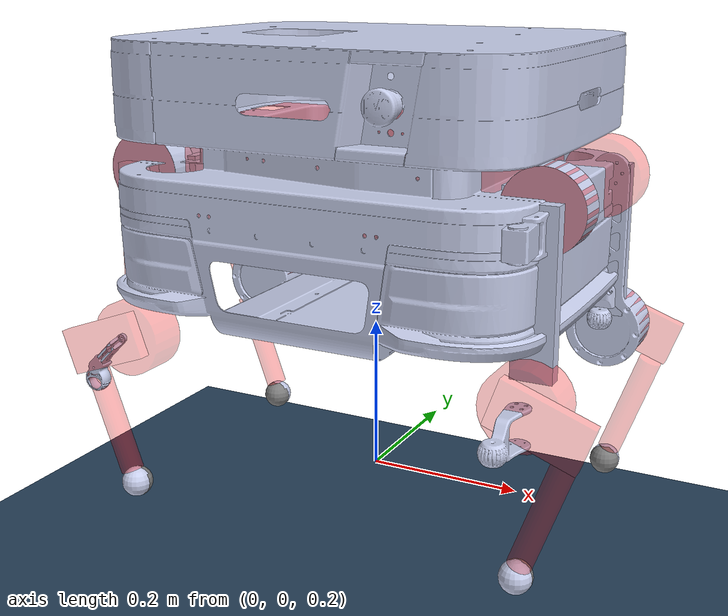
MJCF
<mujoco model="Big red dog uie scene">
  <include file="bigreddog_uie.xml"/>

  <statistic center="0 0 0.1" extent="0.8"/>

  <visual>
    <headlight diffuse="0.6 0.6 0.6" ambient="0.3 0.3 0.3" specular="0 0 0"/>
    <rgba haze="0.15 0.25 0.35 1"/>
    <global azimuth="-130" elevation="-20"/>
  </visual>

  <asset>
    <texture type="skybox" builtin="gradient" rgb1="0.3 0.5 0.7" rgb2="0 0 0" width="512" height="3072"/>
    <texture type="2d" name="groundplane" builtin="checker" mark="edge" rgb1="0.2 0.3 0.4" rgb2="0.1 0.2 0.3"
      markrgb="0.8 0.8 0.8" width="300" height="300"/>
    <material name="groundplane" texture="groundplane" texuniform="true" texrepeat="5 5" reflectance="0.2"/>
  </asset>

  <worldbody>
    <light pos="0 0 1.5" dir="0 0 -1" directional="true"/>
    <geom name="floor" size="0 0 0.05" type="plane" material="groundplane"/>

  </worldbody>
</mujoco>

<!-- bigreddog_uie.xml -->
<mujoco model="bigreddog_uie">
  <compiler angle="radian" meshdir="meshes"/>

  <option cone="elliptic" impratio="100" />

  <default>
    <default class="bigreddog_uie">
      <geom friction="0.4" margin="0.001" condim="1"/>
      <joint damping="0.1" armature="0.01" frictionloss="0.2"/>
      <motor ctrlrange="-20 20"/>
      <default class="hip">
        <joint axis="1 0 0" range="-0.611 0.611"/>
        <motor ctrlrange="-20 20"/>
      </default>
      <default class="thigh">
        <joint axis="0 1 0" range="-2.583 2.583"/>
        <motor ctrlrange="-20 20"/>
      </default>
      <default class="calf">
        <joint axis="0 1 0" range="-2.809 2.809"/>
        <motor ctrlrange="-80 80"/>
      </default>
      <default class="visual">
        <geom type="mesh" contype="0" conaffinity="0" group="2"
          rgba="0.752941 0.752941 0.752941 1"
          density="0"
        />
      </default>
      <default class="collision">
        <geom group="0" type="mesh" rgba="1 0 0 0.3" />
        <default class="foot">
          <geom size="0.02" priority="1" condim="6"
            friction="0.4 0.02 0.01"/>
        </default>
      </default>
    </default>
  </default>

  <asset>
    <mesh name="base_link" file="base_link.STL"/>
    <mesh name="FL_hip_link" file="FL_hip_link.STL"/>
    <mesh name="FL_thigh_link" file="FL_thigh_link.STL"/>
    <mesh name="FL_calf_link" file="FL_calf_link.STL"/>
    <mesh name="FR_hip_link" file="FR_hip_link.STL"/>
    <mesh name="FR_thigh_link" file="FR_thigh_link.STL"/>
    <mesh name="FR_calf_link" file="FR_calf_link.STL"/>
    <mesh name="RL_hip_link" file="RL_hip_link.STL"/>
    <mesh name="RL_thigh_link" file="RL_thigh_link.STL"/>
    <mesh name="RL_calf_link" file="RL_calf_link.STL"/>
    <mesh name="RR_hip_link" file="RR_hip_link.STL"/>
    <mesh name="RR_thigh_link" file="RR_thigh_link.STL"/>
    <mesh name="RR_calf_link" file="RR_calf_link.STL"/>
  </asset>

  <worldbody>
    <body name="base_link" pos="0 0 0.6" childclass="bigreddog_uie">
      <inertial pos="-0.02594078 0.00017041 0.02153795" quat="1 0 0 0" mass="5.2" diaginertia="0.03784813 0.10658838 0.11380621" />
      <freejoint />
      <geom type="mesh" contype="0" conaffinity="0" group="1" density="0" rgba="0.792157 0.819608 0.933333 1" mesh="base_link" class="visual"/>
      <geom size="0.208 0.121 0.0635" type="box" class="collision"/>
      <site name="imu" pos="0 0 0" />
      <body name="FL_hip_link" pos="0.208 0.0655 0">
        <inertial pos="0.0550179 0.0412156 0" quat="0.443075 0.442528 0.55112 0.551472" mass="0.69" diaginertia="0.000948533 0.00068785 0.000551296"/>
        <joint name="FL_hip_joint" class="hip"/>
        <geom type="mesh" contype="0" conaffinity="0" group="1" density="0" rgba="0.792157 0.819608 0.933333 1" mesh="FL_hip_link" class="visual"/>
        <geom size="0.05 0.02125" pos="0.05892 0.04424 0" quat="0.707105 -0.707108 0 0" type="cylinder" class="collision"/>
        <body name="FL_thigh_link" pos="0.058917 0.0648995 0">
          <inertial pos="-8.98e-05 0.0242444 -0.179504" quat="0.705374 0.0425245 -0.0440411 0.706187" mass="0.725" diaginertia="0.00350118 0.00327677 0.000529578"/>
          <joint name="FL_thigh_joint" class="thigh"/>
          <geom type="mesh" contype="0" conaffinity="0" group="1" density="0" rgba="0.792157 0.819608 0.933333 1" mesh="FL_thigh_link" class="visual"/>
          <geom size="0.025 0.009 0.1" pos="0 0.01 -0.088" type="box" rgba="0.792157 0.819608 0.933333 1" class="collision"/>
          <geom size="0.049 0.025" pos="0 0.03 -0.21" quat="0.707105 -0.707108 0 0" type="cylinder" class="collision"/>
          <body name="FL_calf_link" pos="0.00102606 0.056 -0.207181">
            <inertial pos="0.0319708 -0.00204971 -0.0603811" quat="0.763524 0.0463716 0.0949428 0.637076" mass="1.15" diaginertia="0.0085558 0.00774317 0.00101933"/>
            <joint name="FL_calf_joint" class="calf"/>
            <geom type="mesh" contype="0" conaffinity="0" group="1" density="0" rgba="0.792157 0.819608 0.933333 1" mesh="FL_calf_link" class="visual"/>
            <geom size="0.0575 0.0075 0.03" pos="0.02625 0.0075 -0.00955" quat="0.984813 0 0.173616 0" type="box" class="collision"/>
            <geom size="0.015 0.0725" pos="0.02919 -0.006 -0.1197" quat="0.984813 0 0.173616 0" type="cylinder" class="collision"/>
            <geom size="0.02" pos="0 -0.0085 -0.20474" rgba="0.792157 0.819608 0.933333 1"/>
            <geom size="0.02" pos="0 -0.01 -0.205"/>
            <geom size="0.02" pos="0 -0.01 -0.205" contype="0" conaffinity="0" group="1" density="0" rgba="0.2 0.8 0.2 1"/>
          </body>
        </body>
      </body>
      <body name="FR_hip_link" pos="0.208 -0.0655 0">
        <inertial pos="0.0550179 -0.0412156 0" quat="0.551551 0.551041 0.442804 0.442799" mass="0.69" diaginertia="0.000948534 0.00068785 0.000551297"/>
        <joint name="FR_hip_joint" class="hip"/>
        <geom type="mesh" contype="0" conaffinity="0" group="1" density="0" rgba="0.792157 0.819608 0.933333 1" mesh="FR_hip_link" class="visual"/>
        <geom size="0.05 0.02125" pos="0.05892 -0.04424 0" quat="0.707105 -0.707108 0 0" type="cylinder" class="collision"/>
        <body name="FR_thigh_link" pos="0.058917 -0.0648995 0">
          <inertial pos="-8.98e-05 -0.0242445 -0.179505" quat="0.706187 -0.0440412 0.0425245 0.705374" mass="0.725" diaginertia="0.00350113 0.00327668 0.000529609"/>
          <joint name="FR_thigh_joint" class="thigh"/>
          <geom type="mesh" contype="0" conaffinity="0" group="1" density="0" rgba="0.792157 0.819608 0.933333 1" mesh="FR_thigh_link" class="visual"/>
          <geom size="0.025 0.009 0.1" pos="0 -0.01 -0.088" type="box" rgba="0.792157 0.819608 0.933333 1" class="collision"/>
          <geom size="0.049 0.025" pos="0 -0.03 -0.21" quat="0.707105 -0.707108 0 0" type="cylinder" class="collision"/>
          <body name="FR_calf_link" pos="0.00102606 -0.056 -0.207181">
            <inertial pos="0.0319708 0.00204972 -0.0603811" quat="0.637076 0.0949428 0.0463716 0.763524" mass="1.15" diaginertia="0.0085558 0.00774317 0.00101933"/>
            <joint name="FR_calf_joint" class="calf"/>
            <geom type="mesh" contype="0" conaffinity="0" group="1" density="0" rgba="0.792157 0.819608 0.933333 1" mesh="FR_calf_link" class="visual"/>
            <geom size="0.0575 0.0075 0.03" pos="0.02625 -0.0075 -0.00955" quat="0.984813 0 0.173616 0" type="box" class="collision"/>
            <geom size="0.015 0.0725" pos="0.02919 0.006 -0.1197" quat="0.984813 0 0.173616 0" type="cylinder" class="collision"/>
            <geom size="0.02" pos="0 0.0085 -0.20474" rgba="0.792157 0.819608 0.933333 1"/>
            <geom size="0.02" pos="0 0.01 -0.205"/>
            <geom size="0.02" pos="0 0.01 -0.205" contype="0" conaffinity="0" group="1" density="0" rgba="0.2 0.8 0.2 1"/>
          </body>
        </body>
      </body>
      <body name="RL_hip_link" pos="-0.208 0.0655 0">
        <inertial pos="-0.0550179 0.0412156 0" quat="0.551551 0.551041 0.442804 0.442799" mass="0.69" diaginertia="0.000948534 0.00068785 0.000551297"/>
        <joint name="RL_hip_joint" class="hip"/>
        <geom type="mesh" contype="0" conaffinity="0" group="1" density="0" rgba="0.792157 0.819608 0.933333 1" mesh="RL_hip_link"/>
        <geom size="0.05 0.02125" pos="-0.05892 0.04424 0" quat="0.707105 -0.707108 0 0" type="cylinder" class="collision"/>
        <body name="RL_thigh_link" pos="-0.058917 0.0648995 0">
          <inertial pos="8.981e-05 0.0242444 -0.179504" quat="0.706187 0.0440413 -0.0425247 0.705374" mass="0.725" diaginertia="0.00350117 0.00327675 0.000529578"/>
          <joint name="RL_thigh_joint" class="thigh"/>
          <geom type="mesh" contype="0" conaffinity="0" group="1" density="0" rgba="0.792157 0.819608 0.933333 1" mesh="RL_thigh_link"/>
          <geom size="0.025 0.009 0.1" pos="0 0.01 -0.088" type="box" class="collision"/>
          <geom size="0.049 0.025" pos="0 0.03 -0.21" quat="0.707105 -0.707108 0 0" type="cylinder" class="collision"/>
          <body name="RL_calf_link" pos="-0.00102606 0.056 -0.207181">
            <inertial pos="-0.0319708 -0.00204972 -0.0603811" quat="0.637076 -0.0949428 -0.0463716 0.763524" mass="1.15" diaginertia="0.0085558 0.00774317 0.00101933"/>
            <joint name="RL_calf_joint" class="calf"/>
            <geom type="mesh" contype="0" conaffinity="0" group="1" density="0" rgba="0.792157 0.819608 0.933333 1" mesh="RL_calf_link"/>
            <geom size="0.0575 0.0075 0.03" pos="-0.02625 0.0075 -0.00955" quat="0.984813 0 -0.173616 0" type="box" class="collision"/>
            <geom size="0.015 0.0725" pos="-0.02919 -0.006 -0.1197" quat="0.984813 0 -0.173616 0" type="cylinder" class="collision"/>
            <geom size="0.02" pos="0 -0.0085 -0.20474" rgba="0.792157 0.819608 0.933333 1"/>
            <geom size="0.02" pos="0 -0.01 -0.205"/>
            <geom size="0.02" pos="0 -0.01 -0.205" contype="0" conaffinity="0" group="1" density="0" rgba="0.2 0.8 0.2 1"/>
          </body>
        </body>
      </body>
      <body name="RR_hip_link" pos="-0.208 -0.0655 0">
        <inertial pos="-0.0550179 -0.0412156 0" quat="0.443075 0.442528 0.55112 0.551472" mass="0.69" diaginertia="0.000948533 0.00068785 0.000551296"/>
        <joint name="RR_hip_joint" class="hip"/>
        <geom type="mesh" contype="0" conaffinity="0" group="1" density="0" rgba="0.792157 0.819608 0.933333 1" mesh="RR_hip_link"/>
        <geom size="0.05 0.02125" pos="-0.05892 -0.04424 0" quat="0.707105 -0.707108 0 0" type="cylinder" class="collision"/>
        <body name="RR_thigh_link" pos="-0.058917 -0.0648995 0">
          <inertial pos="8.981e-05 -0.0242445 -0.179505" quat="0.705374 -0.0425254 0.044042 0.706187" mass="0.725" diaginertia="0.00350115 0.0032767 0.000529607"/>
          <joint name="RR_thigh_joint" class="thigh"/>
          <geom type="mesh" contype="0" conaffinity="0" group="1" density="0" rgba="0.792157 0.819608 0.933333 1" mesh="RR_thigh_link"/>
          <geom size="0.025 0.009 0.1" pos="0 -0.01 -0.088" type="box" class="collision"/>
          <geom size="0.049 0.025" pos="0 -0.03 -0.21" quat="0.707105 -0.707108 0 0" type="cylinder" class="collision"/>
          <body name="RR_calf_link" pos="-0.00102606 -0.056 -0.207181">
            <inertial pos="-0.0319708 0.00204972 -0.0603811" quat="0.763524 -0.0463716 -0.0949428 0.637076" mass="1.15" diaginertia="0.0085558 0.00774317 0.00101933"/>
            <joint name="RR_calf_joint" class="calf"/>
            <geom type="mesh" contype="0" conaffinity="0" group="1" density="0" rgba="0.792157 0.819608 0.933333 1" mesh="RR_calf_link"/>
            <geom size="0.0575 0.0075 0.03" pos="-0.02625 -0.0075 -0.00955" quat="0.984813 0 -0.173616 0" type="box" class="collision"/>
            <geom size="0.015 0.0725" pos="-0.02919 0.006 -0.1197" quat="0.984813 0 -0.173616 0" type="cylinder" class="collision"/>
            <geom size="0.02" pos="0 0.0085 -0.20474" rgba="0.792157 0.819608 0.933333 1"/>
            <geom size="0.02" pos="0 0.01 -0.205"/>
            <geom size="0.02" pos="0 0.01 -0.205" contype="0" conaffinity="0" group="1" density="0" rgba="0.2 0.8 0.2 1"/>
          </body>
        </body>
      </body>
    </body>
  </worldbody>

  <actuator>
    <motor class="hip" name="FL_hip" joint="FL_hip_joint" />
    <motor class="thigh" name="FL_thigh" joint="FL_thigh_joint" />
    <motor class="calf" name="FL_calf" joint="FL_calf_joint" />

    <motor class="hip" name="FR_hip" joint="FR_hip_joint" />
    <motor class="thigh" name="FR_thigh" joint="FR_thigh_joint" />
    <motor class="calf" name="FR_calf" joint="FR_calf_joint" />

    <motor class="hip" name="RL_hip" joint="RL_hip_joint" />
    <motor class="thigh" name="RL_thigh" joint="RL_thigh_joint" />
    <motor class="calf" name="RL_calf" joint="RL_calf_joint" />

    <motor class="hip" name="RR_hip" joint="RR_hip_joint" />
    <motor class="thigh" name="RR_thigh" joint="RR_thigh_joint" />
    <motor class="calf" name="RR_calf" joint="RR_calf_joint" />
  </actuator>

  <sensor>
    <jointpos name="FL_hip_pos" joint="FL_hip_joint" />
    <jointpos name="FL_thigh_pos" joint="FL_thigh_joint" />
    <jointpos name="FL_calf_pos" joint="FL_calf_joint" />

    <jointpos name="FR_hip_pos" joint="FR_hip_joint" />
    <jointpos name="FR_thigh_pos" joint="FR_thigh_joint" />
    <jointpos name="FR_calf_pos" joint="FR_calf_joint" />
    <jointpos name="RL_hip_pos" joint="RL_hip_joint" />
    <jointpos name="RL_thigh_pos" joint="RL_thigh_joint" />
    <jointpos name="RL_calf_pos" joint="RL_calf_joint" />

    <jointpos name="RR_hip_pos" joint="RR_hip_joint" />
    <jointpos name="RR_thigh_pos" joint="RR_thigh_joint" />
    <jointpos name="RR_calf_pos" joint="RR_calf_joint" />

    <jointvel name="FL_hip_vel" joint="FL_hip_joint" />
    <jointvel name="FL_thigh_vel" joint="FL_thigh_joint" />
    <jointvel name="FL_calf_vel" joint="FL_calf_joint" />

    <jointvel name="FR_hip_vel" joint="FR_hip_joint" />
    <jointvel name="FR_thigh_vel" joint="FR_thigh_joint" />
    <jointvel name="FR_calf_vel" joint="FR_calf_joint" />
    <jointvel name="RL_hip_vel" joint="RL_hip_joint" />
    <jointvel name="RL_thigh_vel" joint="RL_thigh_joint" />
    <jointvel name="RL_calf_vel" joint="RL_calf_joint" />

    <jointvel name="RR_hip_vel" joint="RR_hip_joint" />
    <jointvel name="RR_thigh_vel" joint="RR_thigh_joint" />
    <jointvel name="RR_calf_vel" joint="RR_calf_joint" />

    <jointactuatorfrc name="FL_hip_torque" joint="FL_hip_joint" noise="0.01" />
    <jointactuatorfrc name="FL_thigh_torque" joint="FL_thigh_joint" noise="0.01" />
    <jointactuatorfrc name="FL_calf_torque" joint="FL_calf_joint" noise="0.01" />

    <jointactuatorfrc name="FR_hip_torque" joint="FR_hip_joint" noise="0.01" />
    <jointactuatorfrc name="FR_thigh_torque" joint="FR_thigh_joint" noise="0.01" />
    <jointactuatorfrc name="FR_calf_torque" joint="FR_calf_joint" noise="0.01" />
    <jointactuatorfrc name="RL_hip_torque" joint="RL_hip_joint" noise="0.01" />
    <jointactuatorfrc name="RL_thigh_torque" joint="RL_thigh_joint" noise="0.01" />
    <jointactuatorfrc name="RL_calf_torque" joint="RL_calf_joint" noise="0.01" />

    <jointactuatorfrc name="RR_hip_torque" joint="RR_hip_joint" noise="0.01" />
    <jointactuatorfrc name="RR_thigh_torque" joint="RR_thigh_joint" noise="0.01" />
    <jointactuatorfrc name="RR_calf_torque" joint="RR_calf_joint" noise="0.01" />

    <framequat name="imu_quat" objtype="site" objname="imu" />
    <gyro name="imu_gyro" site="imu" />
    <accelerometer name="imu_acc" site="imu" />

    <framepos name="frame_pos" objtype="site" objname="imu" />
    <framelinvel name="frame_vel" objtype="site" objname="imu" />
    <frameangvel name="frame_ang_vel" objtype="site" objname="imu" />

  </sensor>
</mujoco>
